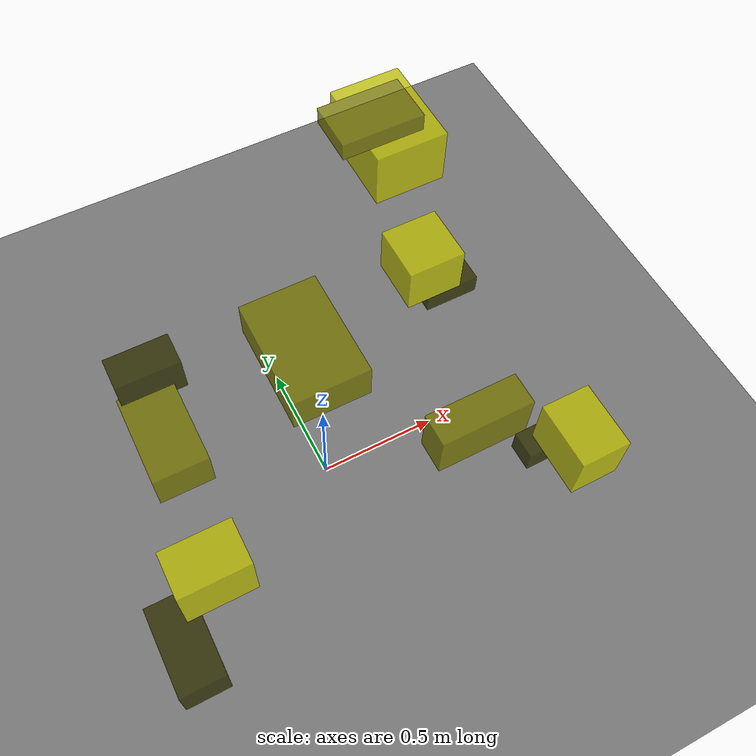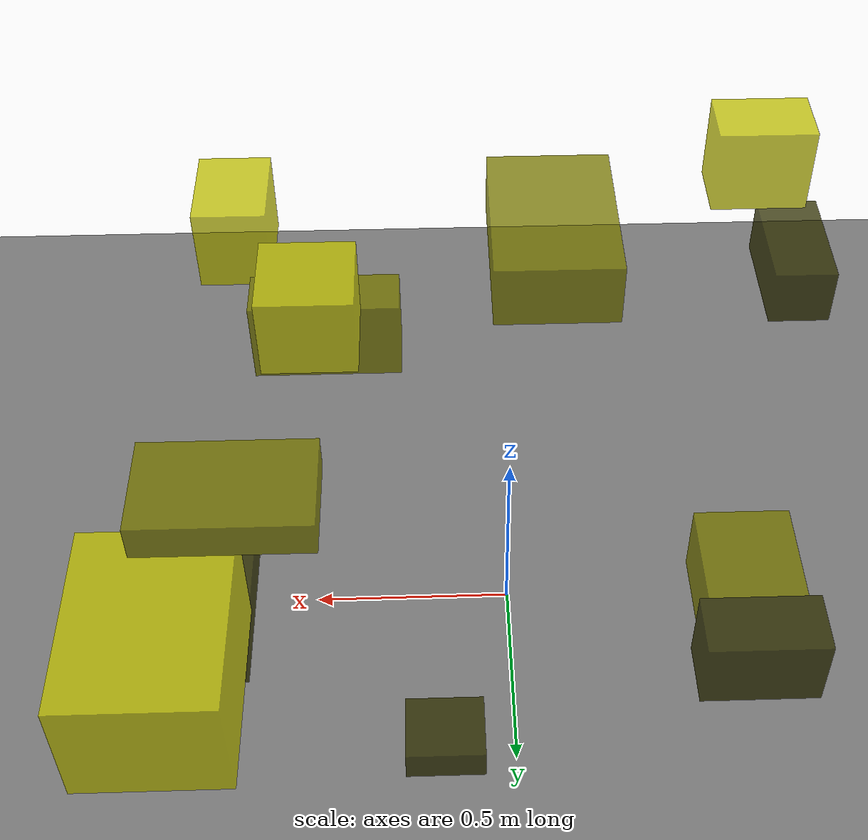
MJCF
<?xml version="1.0"?>
<mujoco model="obstacle_scene">
  <compiler angle="radian" coordinate="local"/>
  <option timestep="0.001" gravity="0 0 -9.81"/>

  <asset>
    <material name="obstacle_mat" rgba="0.8 0.8 0.0 0.8"/>
    <material name="ground_mat" rgba="0.5 0.5 0.5 1"/>
  </asset>

  <worldbody>
    <!-- Ground plane -->
    <geom name="ground" type="plane" size="3 3 0.1" material="ground_mat"/>

    <!-- Obstacles -->
    <body name="obstacle_0" pos="0.885927 -0.331154 0.069234">
      <geom name="obs_0" type="box" size="0.130969 0.059305 0.059085" rgba="0.2 0.2 0.0 0.8"/>
    </body>
    <body name="obstacle_1" pos="0.551399 0.685211 1.184784">
      <geom name="obs_1" type="box" size="0.165036 0.103520 0.036246" rgba="0.5 0.5 0.0 0.8"/>
    </body>
    <body name="obstacle_2" pos="0.677334 -0.617880 0.787836">
      <geom name="obs_2" type="box" size="0.091262 0.122309 0.107945" rgba="0.8 0.8 0.0 0.8"/>
    </body>
    <body name="obstacle_3" pos="-0.779374 -0.610990 0.626546">
      <geom name="obs_3" type="box" size="0.079556 0.155008 0.076912" rgba="0.2 0.2 0.0 0.8"/>
    </body>
    <body name="obstacle_4" pos="-0.082168 -0.073212 1.147089">
      <geom name="obs_4" type="box" size="0.134430 0.196879 0.071666" rgba="0.5 0.5 0.0 0.8"/>
    </body>
    <body name="obstacle_5" pos="-0.625074 -0.547484 1.014626">
      <geom name="obs_5" type="box" size="0.116563 0.077511 0.106649" rgba="0.8 0.8 0.0 0.8"/>
    </body>
    <body name="obstacle_6" pos="0.699271 0.420106 0.545586">
      <geom name="obs_6" type="box" size="0.110923 0.185247 0.043694" rgba="0.2 0.2 0.0 0.8"/>
    </body>
    <body name="obstacle_7" pos="-0.563672 0.275937 0.312090">
      <geom name="obs_7" type="box" size="0.116732 0.199058 0.094168" rgba="0.5 0.5 0.0 0.8"/>
    </body>
    <body name="obstacle_8" pos="0.704508 0.824256 0.899628">
      <geom name="obs_8" type="box" size="0.151380 0.201675 0.125192" rgba="0.8 0.8 0.0 0.8"/>
    </body>
    <body name="obstacle_9" pos="0.172736 0.595731 0.254348">
      <geom name="obs_9" type="box" size="0.089814 0.076887 0.040221" rgba="0.2 0.2 0.0 0.8"/>
    </body>
    <body name="obstacle_10" pos="0.444890 -0.355404 0.658589">
      <geom name="obs_10" type="box" size="0.184533 0.064565 0.107395" rgba="0.5 0.5 0.0 0.8"/>
    </body>
    <body name="obstacle_11" pos="0.436393 0.092260 1.107047">
      <geom name="obs_11" type="box" size="0.101157 0.101140 0.091500" rgba="0.8 0.8 0.0 0.8"/>
    </body>
    <body name="obstacle_12" pos="-0.532183 0.514305 0.446670">
      <geom name="obs_12" type="box" size="0.136083 0.072653 0.092311" rgba="0.2 0.2 0.0 0.8"/>
    </body>
  </worldbody>
</mujoco>
